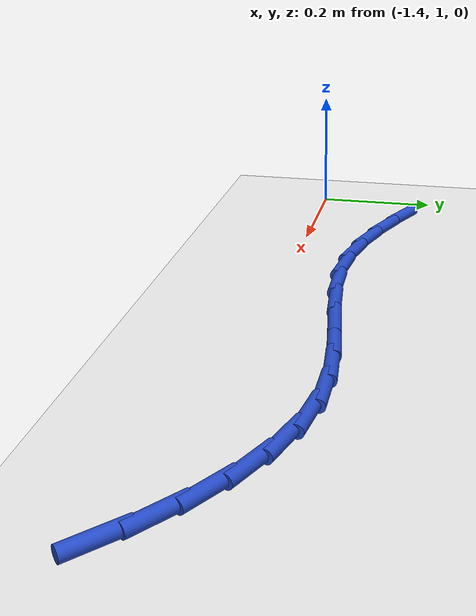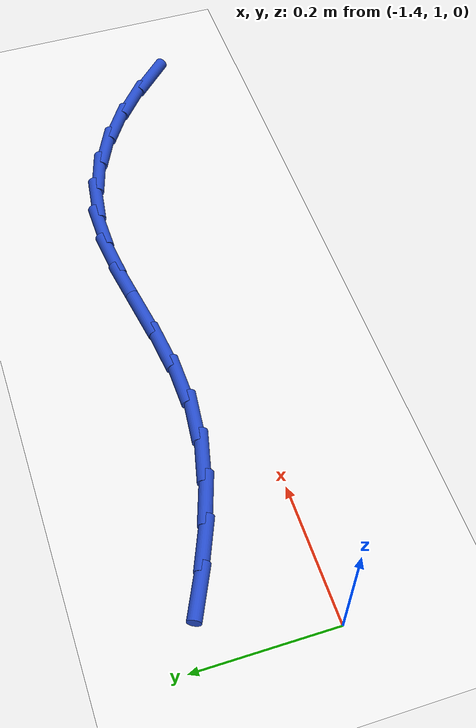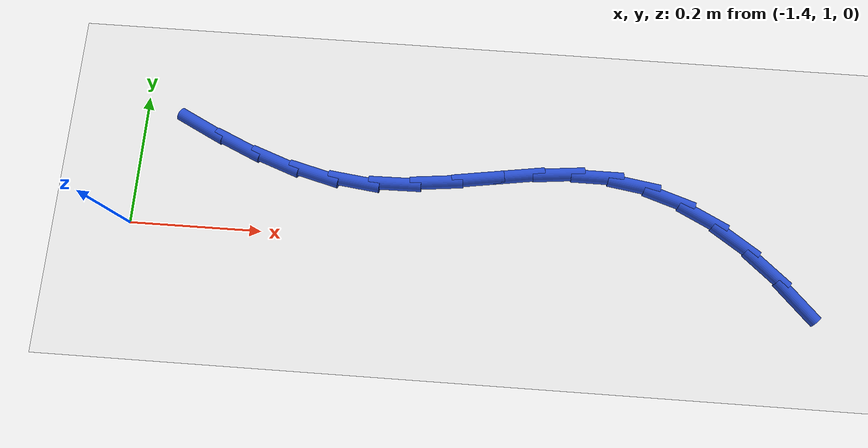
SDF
<sdf version="1.6">
 <world name="default">
  <model name="ground_plane">
   <static>1</static>
   <link name="link">
    <collision name="collision">
     <geometry><plane><normal>0 0 1</normal><size>100 100</size></plane></geometry>
     <surface><friction><ode><mu>100</mu><mu2>50</mu2></ode></friction></surface>
    </collision>
    <visual name="visual">
     <cast_shadows>0</cast_shadows>
     <geometry><plane><normal>0 0 1</normal><size>100 100</size></plane></geometry>
     <material>
      <script><uri>file://media/materials/scripts/gazebo.material</uri><name>Gazebo/WhiteGlow</name></script>
     </material>
    </visual>
   </link>
  </model>
  <model name="line">
   <link name="link_16">
    <pose>-0.3961318236461958 0.9507003152591778 0.01 0 1.57 -0.790026109326363</pose>
    <collision name="collision">
     <geometry><cylinder><radius>0.01</radius><length>0.08</length></cylinder></geometry>
    </collision>
    <visual name="visual">
     <material>
      <script><name>Gazebo/Blue</name><uri>file://media/materials/scripts/gazebo.material</uri></script>
     </material>
     <geometry><cylinder><radius>0.01</radius><length>0.08</length></cylinder></geometry>
    </visual>
   </link>
   <link name="link_17">
    <pose>-0.4405396048240712 0.9955210441049193 0.01 0 1.57 -0.697285138136419</pose>
    <collision name="collision">
     <geometry><cylinder><radius>0.01</radius><length>0.08</length></cylinder></geometry>
    </collision>
    <visual name="visual">
     <material>
      <script><name>Gazebo/Blue</name><uri>file://media/materials/scripts/gazebo.material</uri></script>
     </material>
     <geometry><cylinder><radius>0.01</radius><length>0.08</length></cylinder></geometry>
    </visual>
   </link>
   <link name="link_18">
    <pose>-0.487256134725528 1.0346535208579701 0.01 0 1.57 -0.5876480850921983</pose>
    <collision name="collision">
     <geometry><cylinder><radius>0.01</radius><length>0.08</length></cylinder></geometry>
    </collision>
    <visual name="visual">
     <material>
      <script><name>Gazebo/Blue</name><uri>file://media/materials/scripts/gazebo.material</uri></script>
     </material>
     <geometry><cylinder><radius>0.01</radius><length>0.08</length></cylinder></geometry>
    </visual>
   </link>
   <link name="link_19">
    <pose>-0.5363094675726227 1.0673306293511702 0.01 0 1.57 -0.45968054041209644</pose>
    <collision name="collision">
     <geometry><cylinder><radius>0.01</radius><length>0.08</length></cylinder></geometry>
    </collision>
    <visual name="visual">
     <material>
      <script><name>Gazebo/Blue</name><uri>file://media/materials/scripts/gazebo.material</uri></script>
     </material>
     <geometry><cylinder><radius>0.01</radius><length>0.08</length></cylinder></geometry>
    </visual>
   </link>
   <link name="link_20">
    <pose>-0.587727657587411 1.0927852534173583 0.01 0 1.57 -0.3138354361522993</pose>
    <collision name="collision">
     <geometry><cylinder><radius>0.01</radius><length>0.08</length></cylinder></geometry>
    </collision>
    <visual name="visual">
     <material>
      <script><name>Gazebo/Blue</name><uri>file://media/materials/scripts/gazebo.material</uri></script>
     </material>
     <geometry><cylinder><radius>0.01</radius><length>0.08</length></cylinder></geometry>
    </visual>
   </link>
   <link name="link_21">
    <pose>-0.6415387589919488 1.1102502768893738 0.01 0 1.57 -0.15364593130504733</pose>
    <collision name="collision">
     <geometry><cylinder><radius>0.01</radius><length>0.08</length></cylinder></geometry>
    </collision>
    <visual name="visual">
     <material>
      <script><name>Gazebo/Blue</name><uri>file://media/materials/scripts/gazebo.material</uri></script>
     </material>
     <geometry><cylinder><radius>0.01</radius><length>0.08</length></cylinder></geometry>
    </visual>
   </link>
   <link name="link_22">
    <pose>-0.6977708031764556 1.1189587368596965 0.01 0 1.57 0.000934184219026715</pose>
    <collision name="collision">
     <geometry><cylinder><radius>0.01</radius><length>0.08</length></cylinder></geometry>
    </collision>
    <visual name="visual">
     <material>
      <script><name>Gazebo/Blue</name><uri>file://media/materials/scripts/gazebo.material</uri></script>
     </material>
     <geometry><cylinder><radius>0.01</radius><length>0.08</length></cylinder></geometry>
    </visual>
   </link>
   <link name="link_23">
    <pose>-0.7563385479800254 1.118904023780841 0.01 0 1.57 0.10384789563410841</pose>
    <collision name="collision">
     <geometry><cylinder><radius>0.01</radius><length>0.08</length></cylinder></geometry>
    </collision>
    <visual name="visual">
     <material>
      <script><name>Gazebo/Blue</name><uri>file://media/materials/scripts/gazebo.material</uri></script>
     </material>
     <geometry><cylinder><radius>0.01</radius><length>0.08</length></cylinder></geometry>
    </visual>
   </link>
   <link name="link_24">
    <pose>-0.8167805812931285 1.112604584321352 0.01 0 1.57 0.15261917407957049</pose>
    <collision name="collision">
     <geometry><cylinder><radius>0.01</radius><length>0.08</length></cylinder></geometry>
    </collision>
    <visual name="visual">
     <material>
      <script><name>Gazebo/Blue</name><uri>file://media/materials/scripts/gazebo.material</uri></script>
     </material>
     <geometry><cylinder><radius>0.01</radius><length>0.08</length></cylinder></geometry>
    </visual>
   </link>
   <link name="link_25">
    <pose>-0.8785575050428748 1.1031023491289298 0.01 0 1.57 0.15322028159409756</pose>
    <collision name="collision">
     <geometry><cylinder><radius>0.01</radius><length>0.08</length></cylinder></geometry>
    </collision>
    <visual name="visual">
     <material>
      <script><name>Gazebo/Blue</name><uri>file://media/materials/scripts/gazebo.material</uri></script>
     </material>
     <geometry><cylinder><radius>0.01</radius><length>0.08</length></cylinder></geometry>
    </visual>
   </link>
   <link name="link_26">
    <pose>-0.9411299211563754 1.093439248851276 0.01 0 1.57 0.1075288197713702</pose>
    <collision name="collision">
     <geometry><cylinder><radius>0.01</radius><length>0.08</length></cylinder></geometry>
    </collision>
    <visual name="visual">
     <material>
      <script><name>Gazebo/Blue</name><uri>file://media/materials/scripts/gazebo.material</uri></script>
     </material>
     <geometry><cylinder><radius>0.01</radius><length>0.08</length></cylinder></geometry>
    </visual>
   </link>
   <link name="link_27">
    <pose>-1.0039584315607397 1.0866572141360897 0.01 0 1.57 0.013733818157348338</pose>
    <collision name="collision">
     <geometry><cylinder><radius>0.01</radius><length>0.08</length></cylinder></geometry>
    </collision>
    <visual name="visual">
     <material>
      <script><name>Gazebo/Blue</name><uri>file://media/materials/scripts/gazebo.material</uri></script>
     </material>
     <geometry><cylinder><radius>0.01</radius><length>0.08</length></cylinder></geometry>
    </visual>
   </link>
   <link name="link_28">
    <pose>-1.0665036381830788 1.0857981756310724 0.01 0 1.57 -0.12170804178876625</pose>
    <collision name="collision">
     <geometry><cylinder><radius>0.01</radius><length>0.08</length></cylinder></geometry>
    </collision>
    <visual name="visual">
     <material>
      <script><name>Gazebo/Blue</name><uri>file://media/materials/scripts/gazebo.material</uri></script>
     </material>
     <geometry><cylinder><radius>0.01</radius><length>0.08</length></cylinder></geometry>
    </visual>
   </link>
   <link name="link_29">
    <pose>-1.1282981565427896 1.0933564220772305 0.01 0 1.57 -0.24754717875406523</pose>
    <collision name="collision">
     <geometry><cylinder><radius>0.01</radius><length>0.08</length></cylinder></geometry>
    </collision>
    <visual name="visual">
     <material>
      <script><name>Gazebo/Blue</name><uri>file://media/materials/scripts/gazebo.material</uri></script>
     </material>
     <geometry><cylinder><radius>0.01</radius><length>0.08</length></cylinder></geometry>
    </visual>
   </link>
   <link name="link_30">
    <pose>-1.18927680555329 1.108767605275179 0.01 0 1.57 -0.34486452269764795</pose>
    <collision name="collision">
     <geometry><cylinder><radius>0.01</radius><length>0.08</length></cylinder></geometry>
    </collision>
    <visual name="visual">
     <material>
      <script><name>Gazebo/Blue</name><uri>file://media/materials/scripts/gazebo.material</uri></script>
     </material>
     <geometry><cylinder><radius>0.01</radius><length>0.08</length></cylinder></geometry>
    </visual>
   </link>
   <link name="link_31">
    <pose>-1.2495139758105778 1.1304059759768972 0.01 0 1.57 -0.414898667413155</pose>
    <collision name="collision">
     <geometry><cylinder><radius>0.01</radius><length>0.08</length></cylinder></geometry>
    </collision>
    <visual name="visual">
     <material>
      <script><name>Gazebo/Blue</name><uri>file://media/materials/scripts/gazebo.material</uri></script>
     </material>
     <geometry><cylinder><radius>0.01</radius><length>0.08</length></cylinder></geometry>
    </visual>
   </link>
   <link name="link_32">
    <pose>-1.3090841959365962 1.156644735288199 0.01 0 1.57 -0.45988933165012924</pose>
    <collision name="collision">
     <geometry><cylinder><radius>0.01</radius><length>0.08</length></cylinder></geometry>
    </collision>
    <visual name="visual">
     <material>
      <script><name>Gazebo/Blue</name><uri>file://media/materials/scripts/gazebo.material</uri></script>
     </material>
     <geometry><cylinder><radius>0.01</radius><length>0.08</length></cylinder></geometry>
    </visual>
   </link>
  </model>
 </world>
</sdf>
